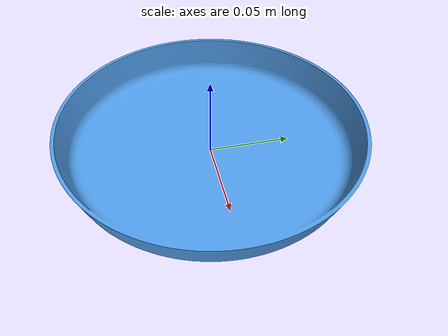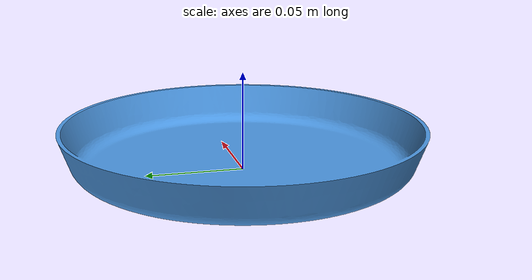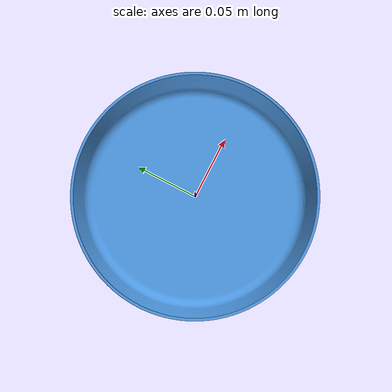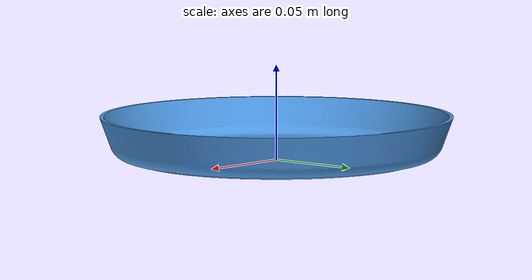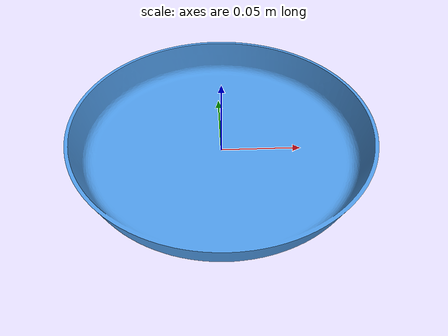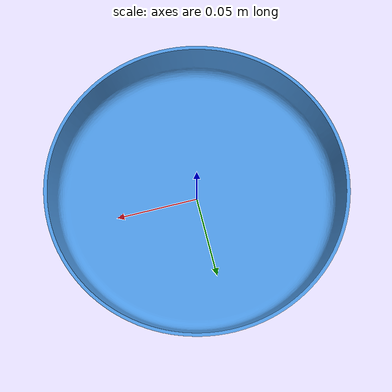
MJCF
<mujoco model="scene_plate">
  <compiler angle="degree" meshdir="meshes" texturedir="textures"/>
  <option gravity="0 0 -9.81"/>
  <default>
    <joint armature="0.01" damping="0.5"/>
    <default class="visual">
      <geom contype="0" conaffinity="0" group="2"/>
    </default>
    <default class="collision">
      <geom rgba="0.9 0.9 0.0 0.2" group="3"/>
    </default>
  </default>
  <asset>
    <material name="M_mat0_010" rgba="0.2996 0.5969 0.8919 1.0000"/>
    <mesh name="ImagetostlMesh0009" file="ImagetostlMesh0009.obj" inertia="shell"/>
  </asset>
  <worldbody>
    <body name="imagetostl_mesh_0_009" pos="0.000000 0.000000 0.000000" quat="0.707107 0.707107 0.000000 0.000000">
      <freejoint/>
      <geom type="mesh" mesh="ImagetostlMesh0009" class="visual" material="M_mat0_010"/>
      <geom type="mesh" mesh="ImagetostlMesh0009" class="collision"/>
    </body>
  </worldbody>
</mujoco>
